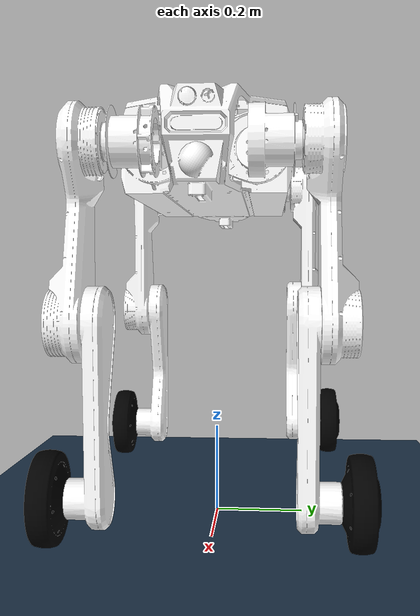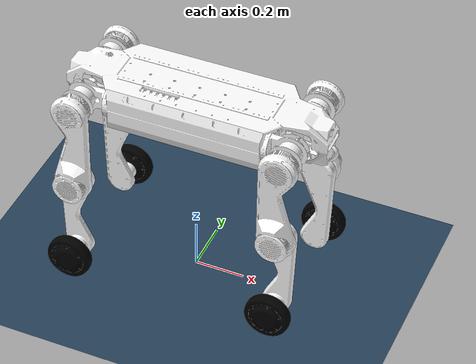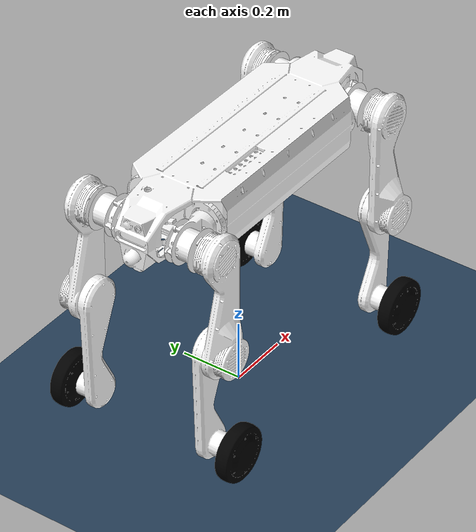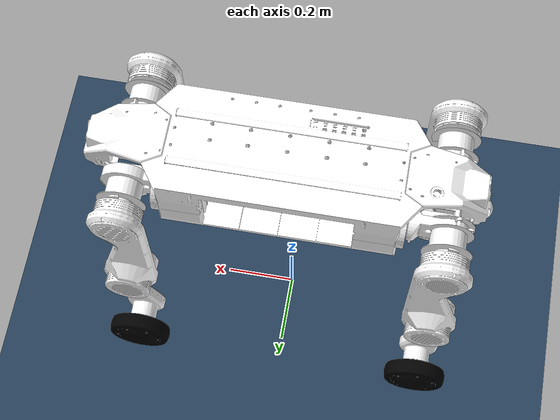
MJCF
<mujoco model="m20_big scene">
  <include file="m20_big.xml"/>

  <statistic center="1.0 0.7 1.0" extent="0.8"/>

  <visual>
    <headlight diffuse="0.6 0.6 0.6" ambient="0.1 0.1 0.1" specular="0.9 0.9 0.9"/>
    <rgba haze="0.15 0.25 0.35 1"/>
    <global azimuth="-140" elevation="-20"/>
  </visual>

  <asset>
    <texture type="skybox" builtin="flat" rgb1="0 0 0" rgb2="0 0 0" width="512" height="3072"/>
    <texture type="2d" name="groundplane" builtin="checker" mark="edge" rgb1="0.2 0.3 0.4" rgb2="0.1 0.2 0.3" markrgb="0.8 0.8 0.8" width="300" height="300"/>
    <material name="groundplane" texture="groundplane" texuniform="true" texrepeat="5 5" reflectance="0.2"/>
  </asset>

  <worldbody>
    <light pos="1 0 3.5" dir="0 0 -1" directional="true"/>
    <geom name="floor" size="0 0 0.05" type="plane" material="groundplane"/>
  </worldbody>
</mujoco>

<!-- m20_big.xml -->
<mujoco model="m20_big">
  <compiler angle="radian" meshdir="../meshes/"/>

  <!-- 默认只显示 group=1 的 visual mesh；碰撞 primitive 在 group=3 且 alpha=0 -->
  <visual>
    <map znear="0.001"/>
  </visual>
  <default>
    <joint damping="0.001" armature="0.01" frictionloss="0.1"/>
  </default>
  <asset>
    <mesh name="base" file="base.STL"/>
    <mesh name="FR_hip" file="FR_hip.STL"/>
    <mesh name="FR_thigh" file="FR_thigh.STL"/>
    <mesh name="FR_calf" file="FR_calf.STL"/>
    <mesh name="FR_wheel" file="FR_wheel.STL"/>
    <mesh name="FL_hip" file="FL_hip.STL"/>
    <mesh name="FL_thigh" file="FL_thigh.STL"/>
    <mesh name="FL_calf" file="FL_calf.STL"/>
    <mesh name="FL_wheel" file="FL_wheel.STL"/>
    <mesh name="RR_hip" file="RR_hip.STL"/>
    <mesh name="RR_thigh" file="RR_thigh.STL"/>
    <mesh name="RR_calf" file="RR_calf.STL"/>
    <mesh name="RR_wheel" file="RR_wheel.STL"/>
    <mesh name="RL_hip" file="RL_hip.STL"/>
    <mesh name="RL_thigh" file="RL_thigh.STL"/>
    <mesh name="RL_calf" file="RL_calf.STL"/>
    <mesh name="RL_wheel" file="RL_wheel.STL"/>
  </asset>

  <worldbody>
    <body name="base" pos="0 0 0.80">
      <inertial pos="0.01588 -0.012088 0.003592" quat="0.00498892 0.707082 0.00522655 0.707095" mass="28.762" diaginertia="2.29693 2.15729 0.348949"/>
      <joint name="floating_base_joint" type="free"/>
      <site name="imu_site" pos="0.0632 -0.0268 0.0435" size="0.005" rgba="1 0 0 1"/>
      <site name="base_site" pos="0 0 0" quat="1 0 0 0"/>
      <geom type="mesh" contype="0" conaffinity="0" group="1" density="0" rgba="1 1 1 1" mesh="base"/>
      <geom group="3" size="0.32 0.166 0.091" pos="0 -0.002 0" type="box" rgba="1 1 1 0"/>
      <geom group="3" size="0.1175 0.05 0.091" pos="0.436 0 0" type="box" rgba="1 1 1 0"/>
      <geom group="3" size="0.1 0.05 0.091" pos="-0.42 0 0" type="box" rgba="1 1 1 0"/>
      <body name="FR_hip" pos="0.3304 -0.099245 -0.00021622">
        <inertial pos="0.049898 -0.016738 -0.001076" quat="0.447986 0.323075 0.639017 0.535339" mass="1.024" diaginertia="0.00358965 0.00336041 0.00153094"/>
        <joint name="FR_hip_joint" pos="0 0 0" axis="1 0 0" range="-0.436 0.611" actuatorfrcrange="-76.4 76.4"/>
        <geom type="mesh" contype="0" conaffinity="0" group="1" density="0" rgba="1 1 1 1" mesh="FR_hip"/>
        <geom group="3" size="0.042 0.03" pos="0.04 0 0" quat="0.707388 0 0.706825 0" type="cylinder" rgba="1 1 1 0"/>
        <geom group="3" size="0.0643 0.065" pos="0.09 -0.0535 0" quat="0.707388 0.706825 0 0" type="cylinder" rgba="1 1 1 0"/>
        <body name="FR_thigh" pos="0.0886403 -0.0798469 -0.00030154">
          <inertial pos="-0.002186 -0.046729 -0.169142" quat="0.703235 0.028226 -0.0276883 0.709857" mass="4.376" diaginertia="0.118698 0.115288 0.00656187"/>
          <joint name="FR_thigh_joint" pos="0 0 0" axis="0 1 0" range="-2.583 2.286" actuatorfrcrange="-76.4 76.4"/>
          <geom type="mesh" contype="0" conaffinity="0" group="1" density="0" rgba="1 1 1 1" mesh="FR_thigh"/>
          <geom group="3" size="0.0475 0.01825 0.15" pos="-0.0285 -0.055 -0.165" type="box" rgba="1 1 1 0"/>
          <geom group="3" size="0.075 0.036" pos="0 -0.07 -0.33" quat="0.707388 0.706825 0 0" type="cylinder" rgba="1 1 1 0"/>
          <geom group="3" size="0.075 0.01875" pos="0 -0.055 0" quat="0.707388 0.706825 0 0" type="cylinder" rgba="1 1 1 0"/>
          <body name="FR_calf" pos="0 -0.0331089 -0.33">
            <inertial pos="0.0075 0.01135 -0.16329" quat="0.721057 0.0238369 -0.0210289 0.692146" mass="1.278" diaginertia="0.0279115 0.0268394 0.00216508"/>
            <joint name="FR_calf_joint" pos="0 0 0" axis="0 1 0" range="-2.792 2.809" actuatorfrcrange="-76.4 76.4"/>
            <geom type="mesh" contype="0" conaffinity="0" group="1" density="0" rgba="1 1 1 1" mesh="FR_calf"/>
            <geom group="3" size="0.0325 0.01875 0.15" pos="0.028 0.0195 -0.165" quat="0.999888 0 -0.0149994 0" type="box" rgba="1 1 1 0"/>
            <geom group="3" size="0.068 0.0195" pos="0 0.02 -0.33" quat="0.707388 0.706825 0 0" type="cylinder" rgba="1 1 1 0"/>
            <geom group="3" size="0.068 0.0195" pos="0 0.02 0" quat="0.707388 0.706825 0 0" type="cylinder" rgba="1 1 1 0"/>
            <geom group="3" size="0.0385 0.02" pos="0 -0.02 -0.33" quat="0.707388 0.706825 0 0" type="cylinder" rgba="1 1 1 0"/>
            <body name="FR_wheel" pos="0.000112374 -0.0287002 -0.330042">
              <inertial pos="-0.00011 -0.047924 4.2e-05" quat="0.707107 0 0 0.707107" mass="3.18" diaginertia="0.01238 0.006847 0.006847"/>
              <joint name="FR_foot_joint" pos="0 0 0" axis="0 1 0" range="-999999 999999" actuatorfrcrange="-21.6 21.6"/>
              <geom type="mesh" contype="0" conaffinity="0" group="1" density="0" rgba="0 0 0 1" mesh="FR_wheel"/>
              <geom group="3" size="0.09 0.0325" pos="0 -0.047 0" quat="0.707388 0.706825 0 0" type="cylinder" rgba="0 0 0 0"/>
            </body>
          </body>
        </body>
      </body>
      <body name="FL_hip" pos="0.3304 0.096756 -0.00021622">
        <inertial pos="0.054668 0.017679 -0.000496" quat="0.519745 0.627006 0.347794 0.464508" mass="1.024" diaginertia="0.00360948 0.00341276 0.00169176"/>
        <joint name="FL_hip_joint" pos="0 0 0" axis="1 0 0" range="-0.611 0.436" actuatorfrcrange="-76.4 76.4"/>
        <geom type="mesh" contype="0" conaffinity="0" group="1" density="0" rgba="1 1 1 1" mesh="FL_hip"/>
        <geom group="3" size="0.042 0.03" pos="0.04 0 0" quat="0.707388 0 0.706825 0" type="cylinder" rgba="1 1 1 0"/>
        <geom group="3" size="0.0643 0.065" pos="0.09 0.0535 0" quat="0.707388 0.706825 0 0" type="cylinder" rgba="1 1 1 0"/>
        <body name="FL_thigh" pos="0.0896011 0.082936 0.000217046">
          <inertial pos="-0.002184 0.04671 -0.169145" quat="0.709664 -0.0276758 0.0281586 0.703433" mass="4.376" diaginertia="0.11869 0.115281 0.00656092"/>
          <joint name="FL_thigh_joint" pos="0 0 0" axis="0 1 0" range="-2.583 2.286" actuatorfrcrange="-76.4 76.4"/>
          <geom type="mesh" contype="0" conaffinity="0" group="1" density="0" rgba="1 1 1 1" mesh="FL_thigh"/>
          <geom group="3" size="0.0475 0.01825 0.15" pos="-0.0285 0.055 -0.165" type="box" rgba="1 1 1 0"/>
          <geom group="3" size="0.075 0.036" pos="0 0.07 -0.33" quat="0.707388 0.706825 0 0" type="cylinder" rgba="1 1 1 0"/>
          <geom group="3" size="0.075 0.01875" pos="0 0.055 0" quat="0.707388 0.706825 0 0" type="cylinder" rgba="1 1 1 0"/>
          <body name="FL_calf" pos="0 0.0330573 -0.33">
            <inertial pos="0.007693 -0.011342 -0.163789" quat="0.692701 -0.020635 0.0233317 0.720552" mass="1.278" diaginertia="0.0276231 0.0265555 0.00191536"/>
            <joint name="FL_calf_joint" pos="0 0 0" axis="0 1 0" range="-2.792 2.809" actuatorfrcrange="-76.4 76.4"/>
            <geom type="mesh" contype="0" conaffinity="0" group="1" density="0" rgba="1 1 1 1" mesh="FL_calf"/>
            <geom group="3" size="0.0325 0.01875 0.15" pos="0.028 -0.0195 -0.165" quat="0.999888 0 -0.0149994 0" type="box" rgba="1 1 1 0"/>
            <geom group="3" size="0.068 0.0195" pos="0 -0.02 -0.33" quat="0.707388 0.706825 0 0" type="cylinder" rgba="1 1 1 0"/>
            <geom group="3" size="0.068 0.0195" pos="0 -0.02 0" quat="0.707388 0.706825 0 0" type="cylinder" rgba="1 1 1 0"/>
            <geom group="3" size="0.0385 0.02" pos="0 0.02 -0.33" quat="0.707388 0.706825 0 0" type="cylinder" rgba="1 1 1 0"/>
            <body name="FL_wheel" pos="0.000114419 0.028752 -0.329964">
              <inertial pos="-0.000112 0.047924 -3.6e-05" quat="0.707107 0 0 0.707107" mass="3.18" diaginertia="0.012379 0.006847 0.006847"/>
              <joint name="FL_foot_joint" pos="0 0 0" axis="0 1 0" range="-999999 999999" actuatorfrcrange="-21.6 21.6"/>
              <geom type="mesh" contype="0" conaffinity="0" group="1" density="0" rgba="0 0 0 1" mesh="FL_wheel"/>
              <geom group="3" size="0.09 0.0325" pos="0 0.047 0" quat="0.707388 0.706825 0 0" type="cylinder" rgba="0 0 0 0"/>
            </body>
          </body>
        </body>
      </body>
      <body name="RR_hip" pos="-0.29716 -0.099245 -0.00021622">
        <inertial pos="-0.073124 -0.020209 -0.009702" quat="0.639525 0.5354 0.447645 0.32244" mass="1.024" diaginertia="0.00359903 0.00336831 0.00154066"/>
        <joint name="RR_hip_joint" pos="0 0 0" axis="1 0 0" range="-0.436 0.611" actuatorfrcrange="-76.4 76.4"/>
        <geom type="mesh" contype="0" conaffinity="0" group="1" density="0" rgba="1 1 1 1" mesh="RR_hip"/>
        <geom group="3" size="0.042 0.03" pos="-0.06 0 -0.009" quat="0.707388 0 0.706825 0" type="cylinder" rgba="1 1 1 0"/>
        <geom group="3" size="0.0643 0.065" pos="-0.112 -0.0535 -0.009" quat="0.707388 0.706825 0 0" type="cylinder" rgba="1 1 1 0"/>
        <body name="RR_thigh" pos="-0.111606 -0.0830547 -0.00891664">
          <inertial pos="0.002184 -0.046675 -0.169144" quat="0.709658 0.0276681 -0.0281579 0.703439" mass="4.376" diaginertia="0.118711 0.115286 0.00656502"/>
          <joint name="RR_thigh_joint" pos="0 0 0" axis="0 1 0" range="-2.583 2.286" actuatorfrcrange="-76.4 76.4"/>
          <geom type="mesh" contype="0" conaffinity="0" group="1" density="0" rgba="1 1 1 1" mesh="RR_thigh"/>
          <geom group="3" size="0.0475 0.01825 0.15" pos="0.0285 -0.055 -0.165" type="box" rgba="1 1 1 0"/>
          <geom group="3" size="0.075 0.036" pos="0 -0.07 -0.33" quat="0.707388 0.706825 0 0" type="cylinder" rgba="1 1 1 0"/>
          <geom group="3" size="0.075 0.01875" pos="0 -0.055 0" quat="0.707388 0.706825 0 0" type="cylinder" rgba="1 1 1 0"/>
          <body name="RR_calf" pos="0 -0.0330574 -0.33">
            <inertial pos="-0.007691 0.011342 -0.163799" quat="0.692667 0.0206501 -0.0233205 0.720585" mass="1.278" diaginertia="0.0276202 0.0265535 0.00191436"/>
            <joint name="RR_calf_joint" pos="0 0 0" axis="0 1 0" range="-2.809 2.792" actuatorfrcrange="-76.4 76.4"/>
            <geom type="mesh" contype="0" conaffinity="0" group="1" density="0" rgba="1 1 1 1" mesh="RR_calf"/>
            <geom group="3" size="0.0325 0.01875 0.15" pos="-0.028 0.0195 -0.165" quat="0.999888 0 -0.0149994 0" type="box" rgba="1 1 1 0"/>
            <geom group="3" size="0.068 0.0195" pos="0 0.02 -0.33" quat="0.707388 0.706825 0 0" type="cylinder" rgba="1 1 1 0"/>
            <geom group="3" size="0.068 0.0195" pos="0 0.02 0" quat="0.707388 0.706825 0 0" type="cylinder" rgba="1 1 1 0"/>
            <geom group="3" size="0.0385 0.02" pos="0 -0.02 -0.33" quat="0.707388 0.706825 0 0" type="cylinder" rgba="1 1 1 0"/>
            <body name="RR_wheel" pos="0.000111969 -0.028752 -0.330029">
              <inertial pos="-0.000114 -0.047924 2.9e-05" quat="0.707107 0 0 0.707107" mass="3.18" diaginertia="0.012379 0.006847 0.006847"/>
              <joint name="RR_foot_joint" pos="0 0 0" axis="0 1 0" range="-999999 999999" actuatorfrcrange="-21.6 21.6"/>
              <geom type="mesh" contype="0" conaffinity="0" group="1" density="0" rgba="0 0 0 1" mesh="RR_wheel"/>
              <geom group="3" size="0.09 0.0325" pos="0 -0.047 0" quat="0.707388 0.706825 0 0" type="cylinder" rgba="0 0 0 0"/>
            </body>
          </body>
        </body>
      </body>
      <body name="RL_hip" pos="-0.297165 0.0967556 -0.00021622">
        <inertial pos="-0.084095 0.019827 -0.000555" quat="0.323482 0.447589 0.535901 0.638619" mass="1.024" diaginertia="0.00358862 0.00335954 0.00153083"/>
        <joint name="RL_hip_joint" pos="0 0 0" axis="1 0 0" range="-0.611 0.436" actuatorfrcrange="-76.4 76.4"/>
        <geom type="mesh" contype="0" conaffinity="0" group="1" density="0" rgba="1 1 1 1" mesh="RL_hip"/>
        <geom group="3" size="0.042 0.03" pos="-0.06 0 0" quat="0.707388 0 0.706825 0" type="cylinder" rgba="1 1 1 0"/>
        <geom group="3" size="0.0643 0.065" pos="-0.1235 0.0535 0" quat="0.707388 0.706825 0 0" type="cylinder" rgba="1 1 1 0"/>
        <body name="RL_thigh" pos="-0.122835 0.0829361 0.000216812">
          <inertial pos="0.002185 0.046712 -0.169142" quat="0.703239 -0.0282652 0.0277275 0.70985" mass="4.376" diaginertia="0.11871 0.115293 0.00656485"/>
          <joint name="RL_thigh_joint" pos="0 0 0" axis="0 1 0" range="-2.286 2.583" actuatorfrcrange="-76.4 76.4"/>
          <geom type="mesh" contype="0" conaffinity="0" group="1" density="0" rgba="1 1 1 1" mesh="RL_thigh"/>
          <geom group="3" size="0.0475 0.01825 0.15" pos="0.0285 0.055 -0.165" type="box" rgba="1 1 1 0"/>
          <geom group="3" size="0.075 0.036" pos="0 0.07 -0.33" quat="0.707388 0.706825 0 0" type="cylinder" rgba="1 1 1 0"/>
          <geom group="3" size="0.075 0.01875" pos="0 0.055 0" quat="0.707388 0.706825 0 0" type="cylinder" rgba="1 1 1 0"/>
          <body name="RL_calf" pos="0 0.0331089 -0.33">
            <inertial pos="-0.007499 -0.01135 -0.16329" quat="0.721089 -0.0236202 0.0208375 0.692126" mass="1.278" diaginertia="0.0279106 0.0268394 0.00192902"/>
            <joint name="RL_calf_joint" pos="0 0 0" axis="0 1 0" range="-2.809 2.792" actuatorfrcrange="-76.4 76.4"/>
            <geom type="mesh" contype="0" conaffinity="0" group="1" density="0" rgba="1 1 1 1" mesh="RL_calf"/>
            <geom group="3" size="0.0325 0.01875 0.15" pos="-0.028 -0.0195 -0.165" quat="0.999888 0 -0.0149994 0" type="box" rgba="1 1 1 0"/>
            <geom group="3" size="0.068 0.0195" pos="0 -0.02 -0.33" quat="0.707388 0.706825 0 0" type="cylinder" rgba="1 1 1 0"/>
            <geom group="3" size="0.068 0.0195" pos="0 -0.02 0" quat="0.707388 0.706825 0 0" type="cylinder" rgba="1 1 1 0"/>
            <geom group="3" size="0.0385 0.02" pos="0 0.02 -0.33" quat="0.707388 0.706825 0 0" type="cylinder" rgba="1 1 1 0"/>
            <body name="RL_wheel" pos="-0.000112115 0.0287002 -0.330042">
              <inertial pos="0.00011 0.047924 4.2e-05" quat="0.707107 0 0 0.707107" mass="3.18" diaginertia="0.01238 0.006847 0.006847"/>
              <joint name="RL_foot_joint" pos="0 0 0" axis="0 1 0" range="-999999 999999" actuatorfrcrange="-21.6 21.6"/>
              <geom type="mesh" contype="0" conaffinity="0" group="1" density="0" rgba="0 0 0 1" mesh="RL_wheel"/>
              <geom group="3" size="0.09 0.0325" pos="0 0.047 0" quat="0.707388 0.706825 0 0" type="cylinder" rgba="0 0 0 0"/>
            </body>
          </body>
        </body>
      </body>
    </body>
  </worldbody>

  <actuator>
    <!-- Order follows MuJoCo qpos / body tree: FR, FL, RR, RL -->
    <motor name="FR_hip_joint" joint="FR_hip_joint" ctrllimited="true" ctrlrange="-76.4 76.4" gear="1"/>
    <motor name="FR_thigh_joint" joint="FR_thigh_joint" ctrllimited="true" ctrlrange="-76.4 76.4" gear="1"/>
    <motor name="FR_calf_joint" joint="FR_calf_joint" ctrllimited="true" ctrlrange="-76.4 76.4" gear="1"/>
    <motor name="FR_foot_joint" joint="FR_foot_joint" ctrllimited="true" ctrlrange="-21.6 21.6" gear="1"/>
    <motor name="FL_hip_joint" joint="FL_hip_joint" ctrllimited="true" ctrlrange="-76.4 76.4" gear="1"/>
    <motor name="FL_thigh_joint" joint="FL_thigh_joint" ctrllimited="true" ctrlrange="-76.4 76.4" gear="1"/>
    <motor name="FL_calf_joint" joint="FL_calf_joint" ctrllimited="true" ctrlrange="-76.4 76.4" gear="1"/>
    <motor name="FL_foot_joint" joint="FL_foot_joint" ctrllimited="true" ctrlrange="-21.6 21.6" gear="1"/>
    <motor name="RR_hip_joint" joint="RR_hip_joint" ctrllimited="true" ctrlrange="-76.4 76.4" gear="1"/>
    <motor name="RR_thigh_joint" joint="RR_thigh_joint" ctrllimited="true" ctrlrange="-76.4 76.4" gear="1"/>
    <motor name="RR_calf_joint" joint="RR_calf_joint" ctrllimited="true" ctrlrange="-76.4 76.4" gear="1"/>
    <motor name="RR_foot_joint" joint="RR_foot_joint" ctrllimited="true" ctrlrange="-21.6 21.6" gear="1"/>
    <motor name="RL_hip_joint" joint="RL_hip_joint" ctrllimited="true" ctrlrange="-76.4 76.4" gear="1"/>
    <motor name="RL_thigh_joint" joint="RL_thigh_joint" ctrllimited="true" ctrlrange="-76.4 76.4" gear="1"/>
    <motor name="RL_calf_joint" joint="RL_calf_joint" ctrllimited="true" ctrlrange="-76.4 76.4" gear="1"/>
    <motor name="RL_foot_joint" joint="RL_foot_joint" ctrllimited="true" ctrlrange="-21.6 21.6" gear="1"/>
  </actuator>

  <sensor>
    <!-- IMU -->
    <framequat name="base_quat" objtype="site" objname="base_site"/>
    <accelerometer site="imu_site"/>
    <gyro site="imu_site"/>

    <!-- jointpos / jointvel: order matches qpos[7:] and ctrl (FR FL RR RL) -->
    <jointpos name="FR_hip_pos" joint="FR_hip_joint"/>
    <jointpos name="FR_thigh_pos" joint="FR_thigh_joint"/>
    <jointpos name="FR_calf_pos" joint="FR_calf_joint"/>
    <jointpos name="FR_foot_pos" joint="FR_foot_joint"/>
    <jointpos name="FL_hip_pos" joint="FL_hip_joint"/>
    <jointpos name="FL_thigh_pos" joint="FL_thigh_joint"/>
    <jointpos name="FL_calf_pos" joint="FL_calf_joint"/>
    <jointpos name="FL_foot_pos" joint="FL_foot_joint"/>
    <jointpos name="RR_hip_pos" joint="RR_hip_joint"/>
    <jointpos name="RR_thigh_pos" joint="RR_thigh_joint"/>
    <jointpos name="RR_calf_pos" joint="RR_calf_joint"/>
    <jointpos name="RR_foot_pos" joint="RR_foot_joint"/>
    <jointpos name="RL_hip_pos" joint="RL_hip_joint"/>
    <jointpos name="RL_thigh_pos" joint="RL_thigh_joint"/>
    <jointpos name="RL_calf_pos" joint="RL_calf_joint"/>
    <jointpos name="RL_foot_pos" joint="RL_foot_joint"/>

    <jointvel name="FR_hip_vel" joint="FR_hip_joint"/>
    <jointvel name="FR_thigh_vel" joint="FR_thigh_joint"/>
    <jointvel name="FR_calf_vel" joint="FR_calf_joint"/>
    <jointvel name="FR_foot_vel" joint="FR_foot_joint"/>
    <jointvel name="FL_hip_vel" joint="FL_hip_joint"/>
    <jointvel name="FL_thigh_vel" joint="FL_thigh_joint"/>
    <jointvel name="FL_calf_vel" joint="FL_calf_joint"/>
    <jointvel name="FL_foot_vel" joint="FL_foot_joint"/>
    <jointvel name="RR_hip_vel" joint="RR_hip_joint"/>
    <jointvel name="RR_thigh_vel" joint="RR_thigh_joint"/>
    <jointvel name="RR_calf_vel" joint="RR_calf_joint"/>
    <jointvel name="RR_foot_vel" joint="RR_foot_joint"/>
    <jointvel name="RL_hip_vel" joint="RL_hip_joint"/>
    <jointvel name="RL_thigh_vel" joint="RL_thigh_joint"/>
    <jointvel name="RL_calf_vel" joint="RL_calf_joint"/>
    <jointvel name="RL_foot_vel" joint="RL_foot_joint"/>
  </sensor>
</mujoco>
